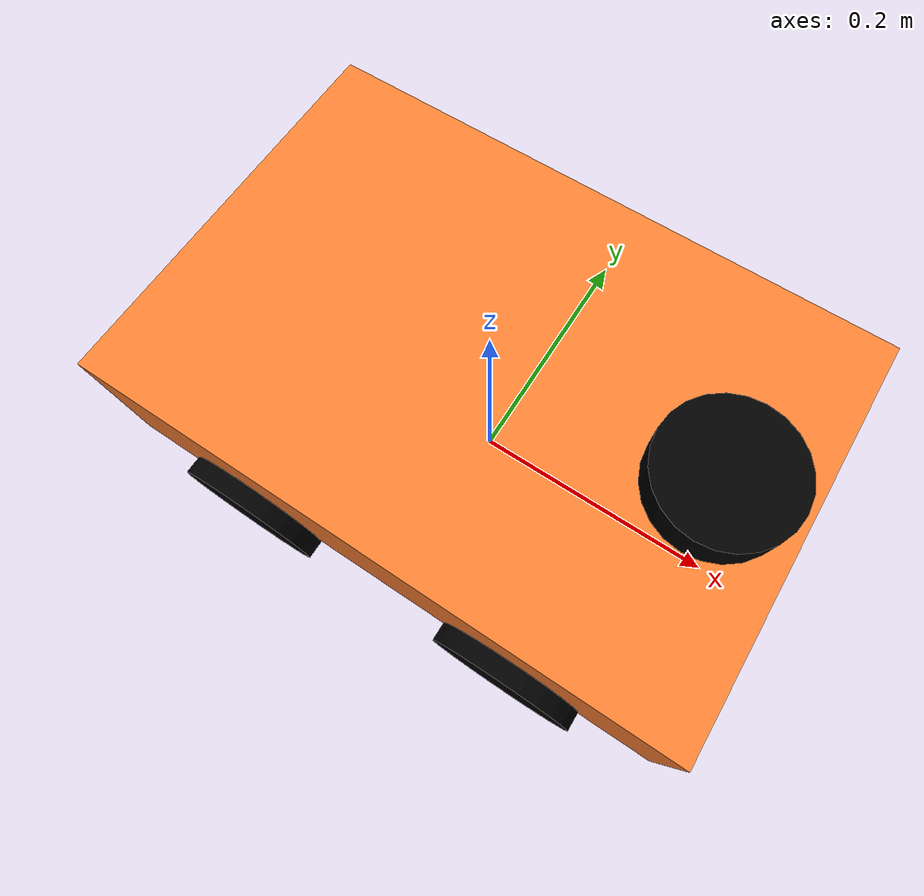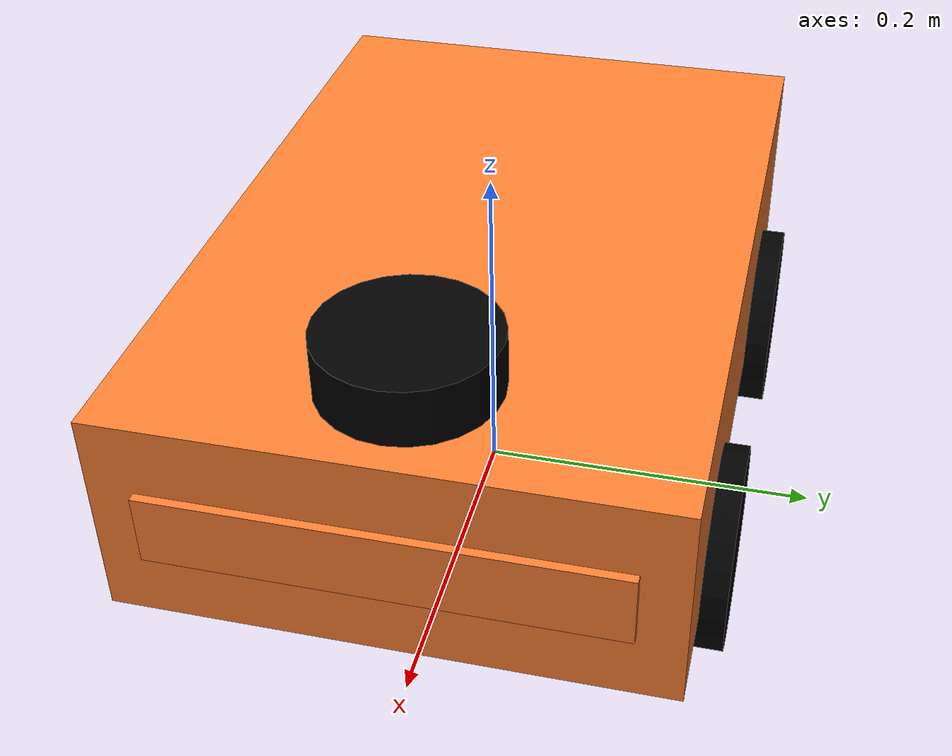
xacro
<?xml version="1.0" encoding="UTF-8"?>

<robot name="robot_base" xmlns:xacro="http://www.ros.org/wiki/xacro">

    <xacro:property name="PI" value="3.141"/>

    <material name="black">
        <color rgba="0.0 0.0 0.0 1.0" />
    </material>

    <xacro:property name="base_footprint_radius" value="0.001" />
    <xacro:property name="robot_base_link_length" value="0.448" />
    <xacro:property name="robot_base_link_width" value="0.300" />
    <xacro:property name="robot_base_link_higth" value="0.120" />
    <xacro:property name="robot_base_link_mass" value="5" />
    <xacro:property name="earth_space" value="0.056" />
    <xacro:property name="wheel_radius" value="0.056" />
    <xacro:property name="wheel_length" value="0.028" />
    <xacro:property name="wheel_mass" value="2" />

    <xacro:macro name="Box_inertial_matrix" params="m l w h">
       <inertial>
               <mass value="${m}" />
               <inertia ixx="${m*(h*h + l*l)/12}" ixy = "0" ixz = "0"
                   iyy="${m*(w*w + l*l)/12}" iyz= "0"
                   izz="${m*(w*w + h*h)/12}" />
       </inertial>
    </xacro:macro>

    <xacro:macro name="cylinder_inertial_matrix" params="m r h">
        <inertial>
            <mass value="${m}" />
            <inertia ixx="${m*(3*r*r+h*h)/12}" ixy = "0" ixz = "0"
                iyy="${m*(3*r*r+h*h)/12}" iyz = "0"
                izz="${m*r*r/2}" />
        </inertial>
    </xacro:macro>

    <!--base_footprint_link-->
    <link name="base_footprint">
      <visual>
        <geometry>
          <sphere radius="${base_footprint_radius}" />
        </geometry>
      </visual>
    </link>
    <!--robot_base_link-->
    <link name="robot_base_link">
      <visual>
        <geometry>
          <box size="${robot_base_link_length} ${robot_base_link_width} ${robot_base_link_higth}"/>
        </geometry>
        <origin xyz="0 0 0" rpy="0 0 0" />
        <material name="yellow">
          <color rgba="1.0 0.5 0.2 1.0" />
        </material>
      </visual>

      <collision>
        <geometry>
          <box size="${robot_base_link_length} ${robot_base_link_width} ${robot_base_link_higth}"/>
        </geometry>
        <origin xyz="0 0 0" rpy="0 0 0" />
      </collision>

      <xacro:Box_inertial_matrix m="${robot_base_link_mass}" l="${robot_base_link_length}" w="${robot_base_link_width}" h="${robot_base_link_higth}" />
    </link>

    <gazebo reference="robot_base_link">
        <material>Gazebo/Yellow</material>
    </gazebo>
    <!--base_link joint-->
    <joint name="link2footprint" type="fixed">
      <parent link="base_footprint" />
      <child link="robot_base_link" />
      <origin xyz="0 0 ${earth_space + robot_base_link_higth / 2 }" />
    </joint>

    <!--wheels_link-->
    <xacro:macro name="add_front_wheels" params="name flag">

      <link name="${name}_front_wheel">
        <visual>
          <geometry>
            <cylinder radius="${wheel_radius}" length="${wheel_length}" />
          </geometry>
          <origin xyz="0.0 0.0 0.0" rpy="${PI / 2} 0.0 0.0" />
          <material name="black" />
        </visual>

        <collision>
          <geometry>
            <cylinder radius="${wheel_radius}" length="${wheel_length}" />
          </geometry>
          <surface>
            <friction>
              <fdir1>1 0 0</fdir1>
              <kp>1000000.0</kp> <!-- kp and kd for rubber -->
              <kd>100.0</kd>
              <mu>1</mu>
              <mu2>1</mu2>
              <slip1>0.5</slip1>
              <slip2>0</slip2>
            </friction>
          </surface>
          <origin xyz="0.0 0.0 0.0" rpy="${PI / 2} 0.0 0.0" />
        </collision>

        <xacro:cylinder_inertial_matrix m="${wheel_mass}" r="${wheel_radius}" h="${wheel_length}" />
      </link>

      <gazebo reference="${name}_front_wheel">
        <material>Gazebo/Red</material>
      </gazebo>

      <!--wheels_joint-->
      <joint name="${name}_front_wheel2robot_base_link" type="continuous">
        <parent link="robot_base_link" />
        <child link="${name}_front_wheel" />
        <origin xyz="${robot_base_link_length / 4} ${flag * robot_base_link_width / 2} ${-1 * robot_base_link_higth / 2}" />
        <axis xyz="0 1 0" />
      </joint>
    </xacro:macro>

    <xacro:macro name="add_rear_wheels" params="name flag">

      <link name="${name}_rear_wheel">
        <visual>
          <geometry>
            <cylinder radius="${wheel_radius}" length="${wheel_length}" />
          </geometry>
          <origin xyz="0.0 0.0 0.0" rpy="${PI / 2} 0.0 0.0" />
          <material name="black" />
        </visual>

        <collision>
          <geometry>
            <cylinder radius="${wheel_radius}" length="${wheel_length}" />
          </geometry>
          <surface>
            <friction>
              <fdir1>1 0 0</fdir1>
              <kp>1000000.0</kp> <!-- kp and kd for rubber -->
              <kd>100.0</kd>
              <mu>1</mu>
              <mu2>1</mu2>
              <slip1>0.5</slip1>
              <slip2>0</slip2>
            </friction>
          </surface>
          <origin xyz="0.0 0.0 0.0" rpy="${PI / 2} 0.0 0.0" />
        </collision>

        <xacro:cylinder_inertial_matrix m="${wheel_mass}" r="${wheel_radius}" h="${wheel_length}" />
      </link>

      <gazebo reference="${name}_rear_wheel">
        <material>Gazebo/Red</material>
      </gazebo>

      <!--wheels_joint-->
      <joint name="${name}_rear_wheel2robot_base_link" type="continuous">
        <parent link="robot_base_link" />
        <child link="${name}_rear_wheel" />
        <origin xyz="${-1 * robot_base_link_length / 4} ${flag * robot_base_link_width / 2} ${-1 * robot_base_link_higth / 2}" />
        <axis xyz="0 1 0" />
      </joint>
    </xacro:macro>

    <xacro:add_front_wheels name="left" flag="1" />
    <xacro:add_front_wheels name="right" flag="-1" />
    <xacro:add_rear_wheels name="left" flag="1" />
    <xacro:add_rear_wheels name="right" flag="-1" />

    <link name="camera">
      <visual>
        <origin xyz="0.0 0.0 0.0" rpy="0.0 0.0 0.0"/>
        <geometry>
          <box size="0.01 0.25 0.04"/>
        </geometry>
        <material name="yellow">
          <color rgba="1.0 0.5 0.2 1.0" />
        </material>
      </visual>
      <collision>
        <origin xyz="0.0 0.0 0.0" rpy="0.0 0.0 0.0"/>
        <geometry>
          <box size="0.01 0.25 0.04"/>
        </geometry>
      </collision>
      <xacro:Box_inertial_matrix m="1.0" l="0.01" w="0.25" h="0.04" />
    </link>
    <joint name="camera2base" type="fixed">
      <origin xyz="0.224 0.0 0.0" rpy="0.0 0.0 0.0"/>
      <parent link="robot_base_link"/>
      <child link="camera"/>
      <axis xyz="0.0 0.0 0.0"/>
      <limit lower="0.0" upper="0.0" effort="0.0" velocity="0.0"/>
    </joint>

    <link name="hokuyo">
      <visual>
        <origin xyz="0.0 0.0 0.0" rpy="0.0 0.0 0.0"/>
        <geometry>
          <cylinder radius="0.048" length="0.032"/>
        </geometry>
        <material name="black" />
      </visual>
      <collision>
        <origin xyz="0.0 0.0 0.0" rpy="0.0 0.0 0.0"/>
        <geometry>
          <cylinder radius="0.048" length="0.032"/>
        </geometry>
      </collision>
      <xacro:cylinder_inertial_matrix m="1.0" r="0.048" h="0.032" />
    </link>
    <joint name="hokuyo2base" type="fixed">
      <origin xyz="0.164 0.0 0.08" rpy="0.0 0.0 0.0"/>
      <parent link="robot_base_link"/>
      <child link="hokuyo"/>
      <axis xyz="0.0 0.0 0.0"/>
      <limit lower="0.0" upper="0.0" effort="0.0" velocity="0.0"/>
    </joint>

</robot>
